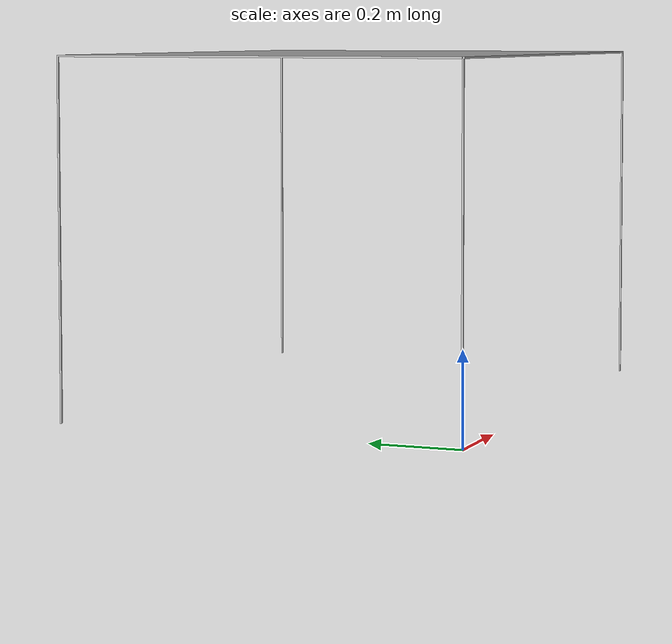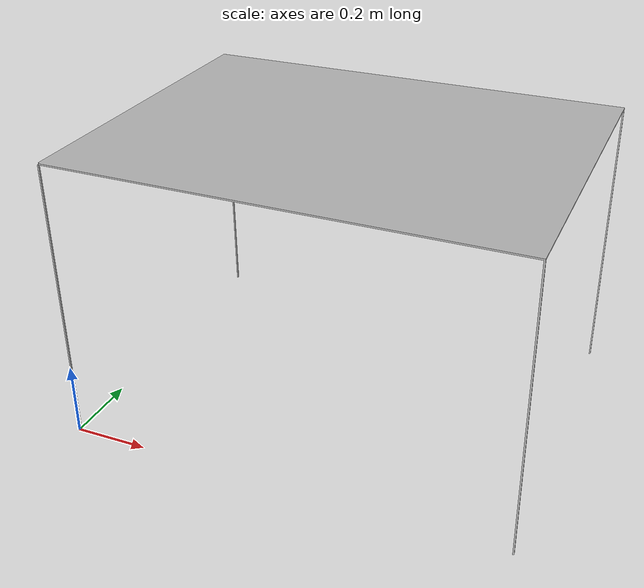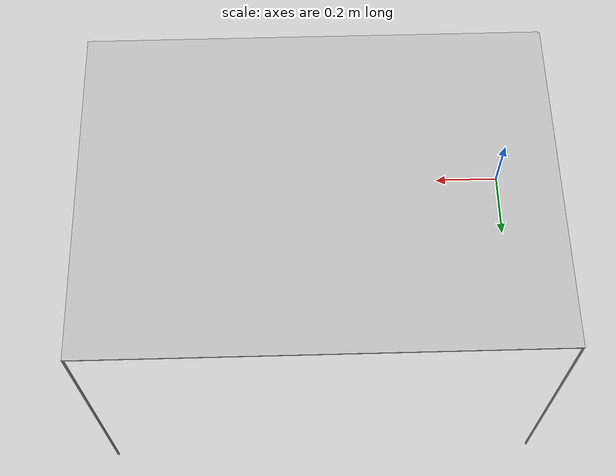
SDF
<?xml version="1.0" ?>
<sdf version="1.6">
  <model name="measurement">
    <static>true</static>
    <link name="link">
      <visual name="visual">
        <geometry>
          <mesh>
            <scale>0.1 0.1 0.1</scale>
            <uri>model://workspace/meshes/workspace.stl</uri>
          </mesh>
        </geometry>
      </visual>
    </link>
  </model>
</sdf>
